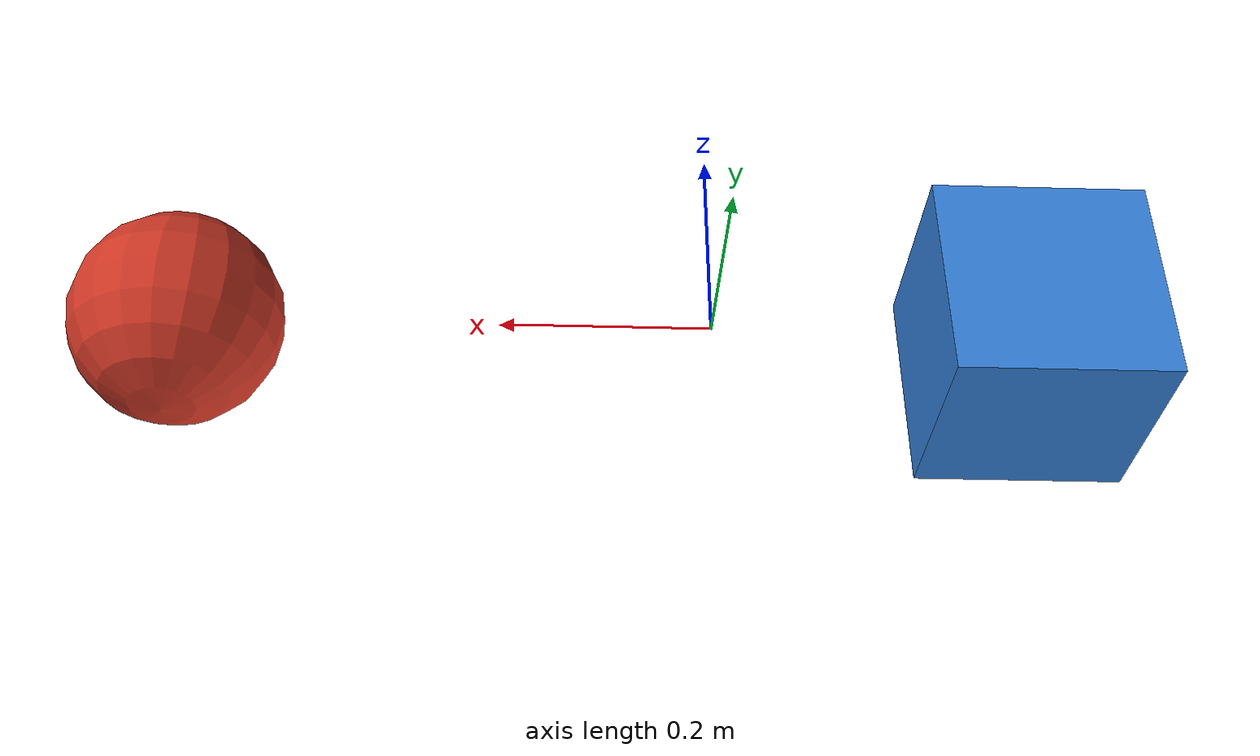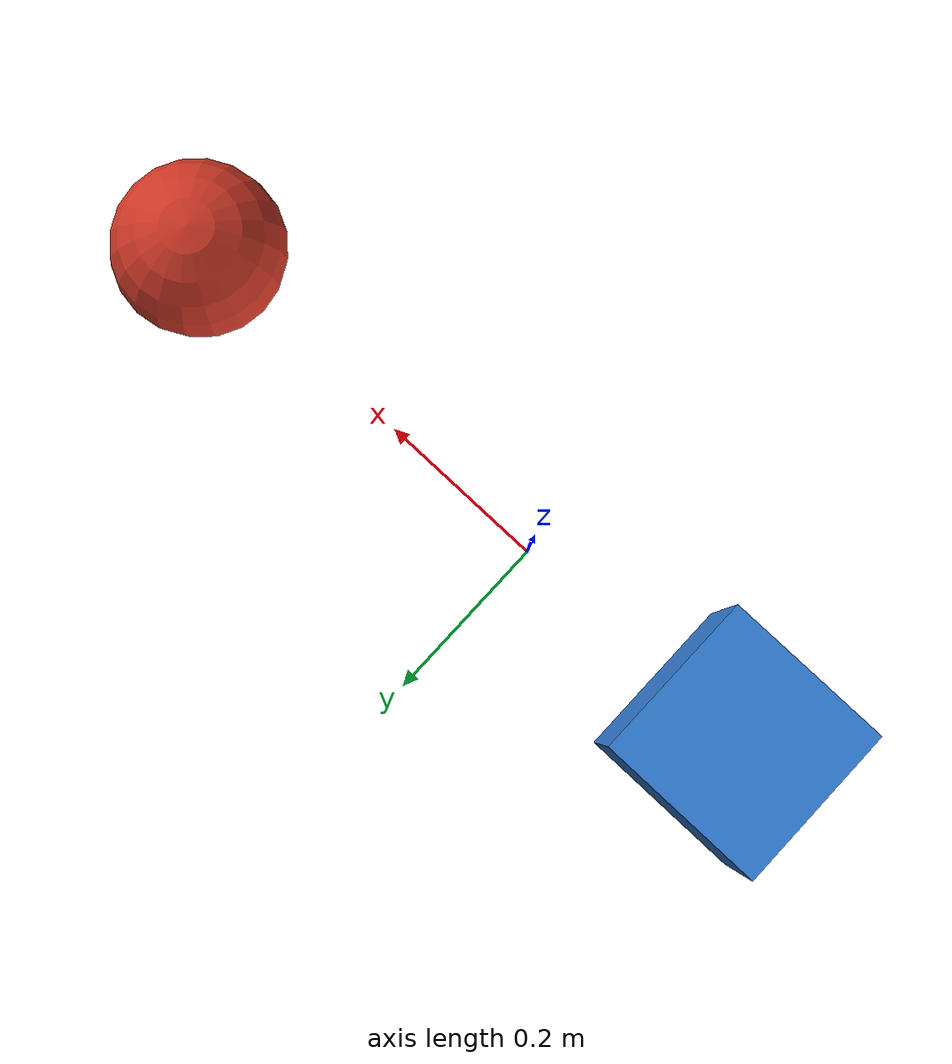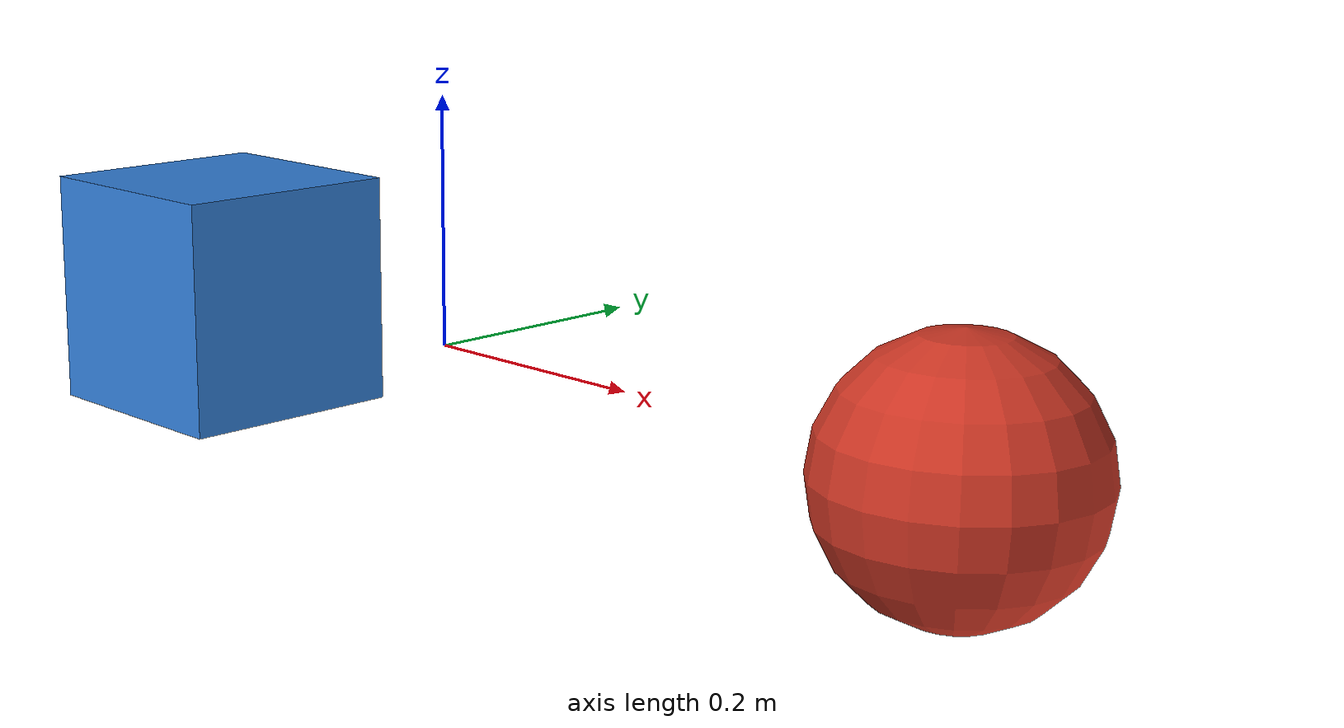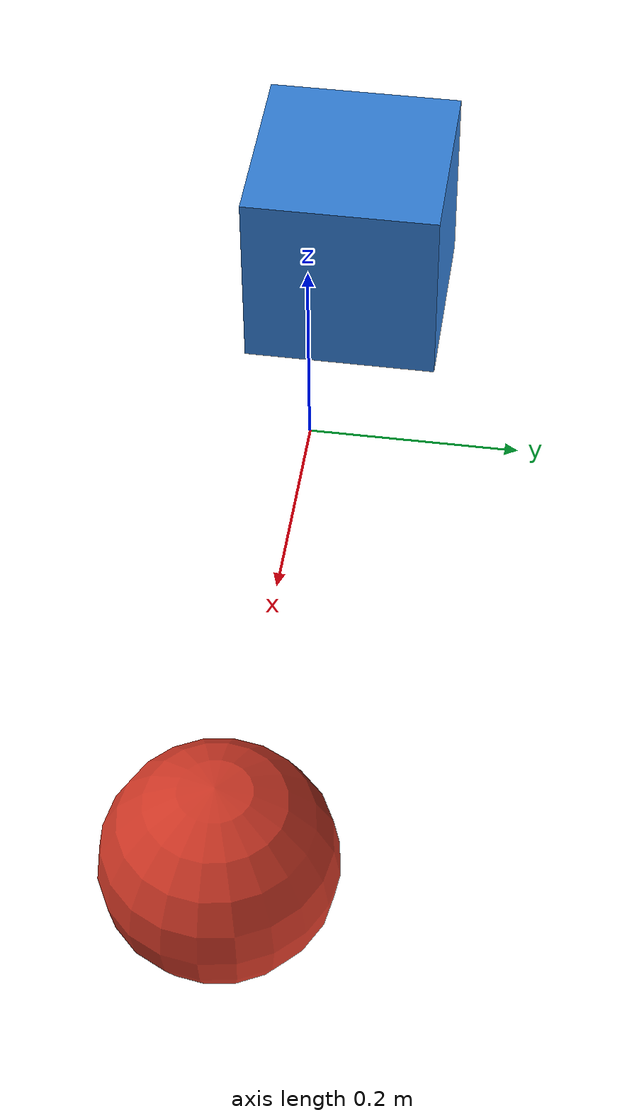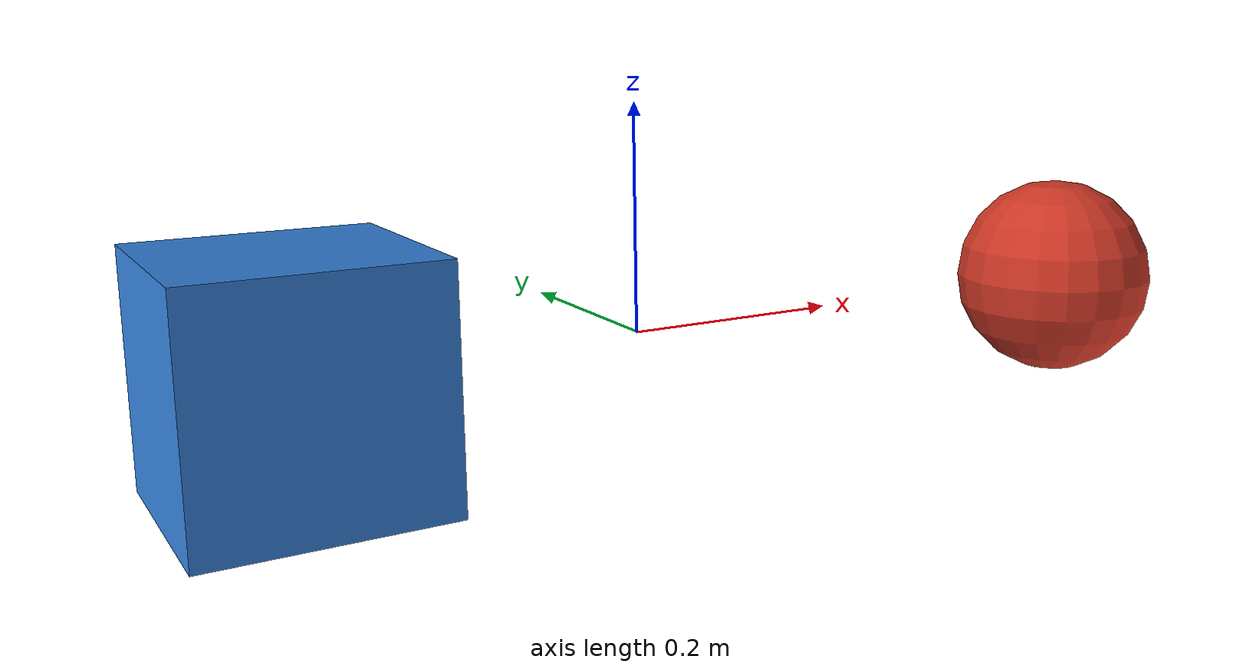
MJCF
<mujoco model="geom_distance">
    <compiler angle="radian"/>
    <option gravity="0 0 -9.81" timestep="0.001" integrator="RK4">
        <flag energy="enable"/>
    </option>

    <default>
        <geom contype="0" conaffinity="0"/>
    </default>

    <worldbody>
        <geom name="fixed" type="sphere" size="0.1" pos="0.5 0 0"
              rgba="0.82 0.22 0.15 1"/>
        <body name="moving" pos="-0.3 0 0">
            <joint name="slide" type="slide" axis="1 0 0"
                   stiffness="10" damping="0"/>
            <inertial pos="0 0 0" mass="1.0" diaginertia="0.01 0.01 0.01"/>
            <geom name="box" type="box" size="0.1 0.1 0.1"
                  rgba="0.2 0.5 0.85 1"/>
        </body>
    </worldbody>

    <sensor>
        <distance name="dist" geom1="box" geom2="fixed" cutoff="10"/>
        <normal name="norm" geom1="box" geom2="fixed" cutoff="10"/>
        <fromto name="ft" geom1="box" geom2="fixed" cutoff="10"/>
    </sensor>
</mujoco>
